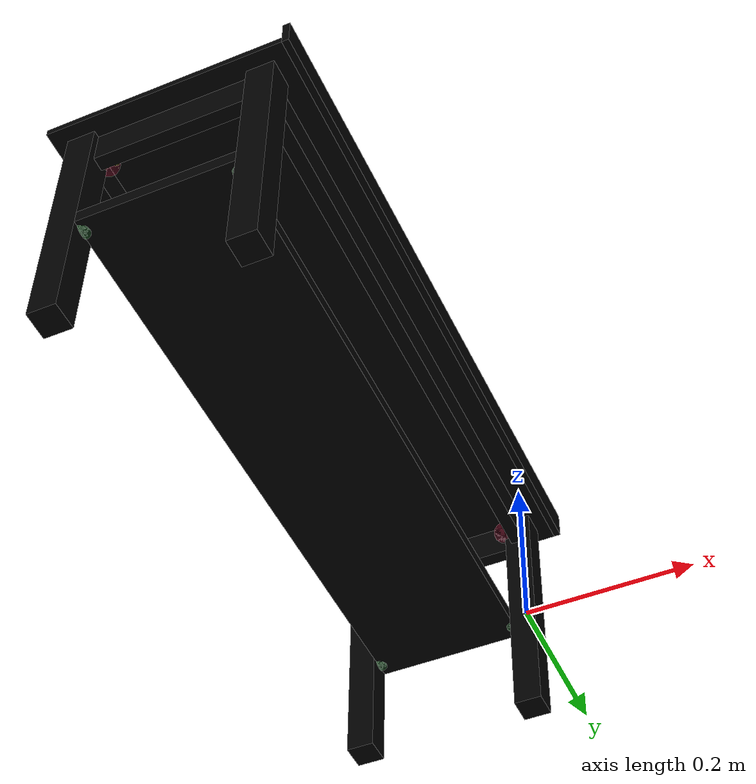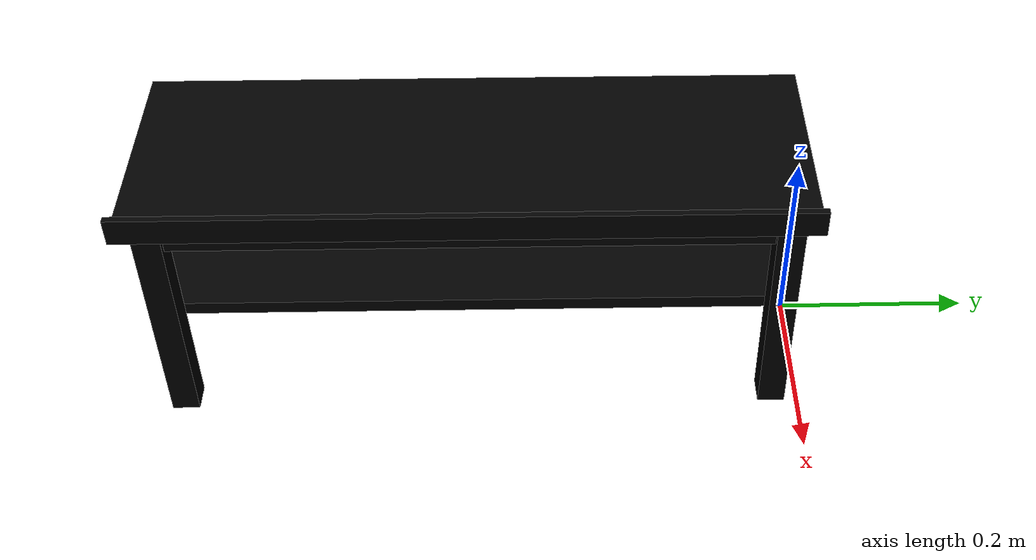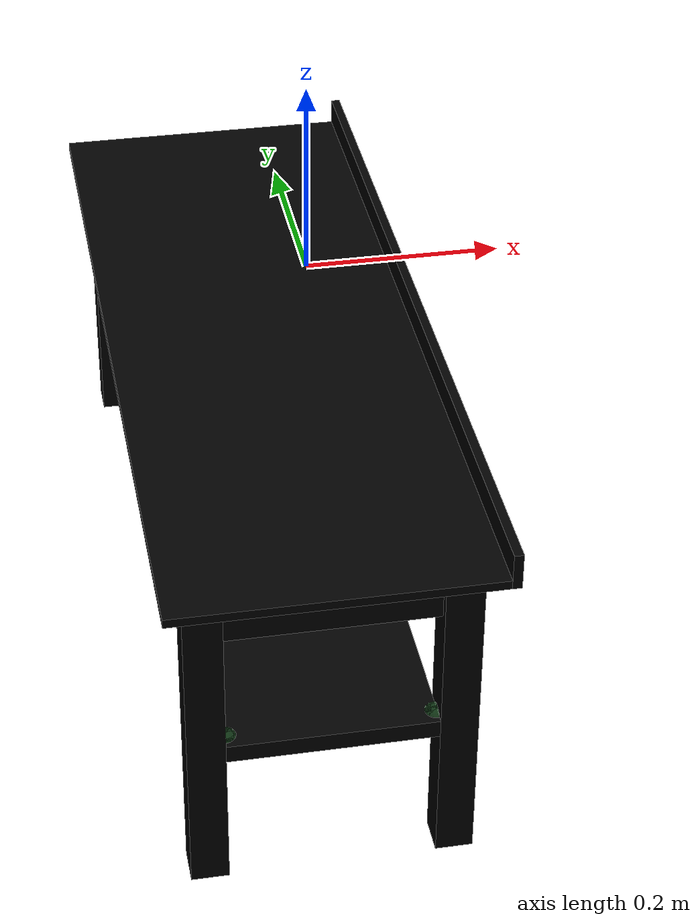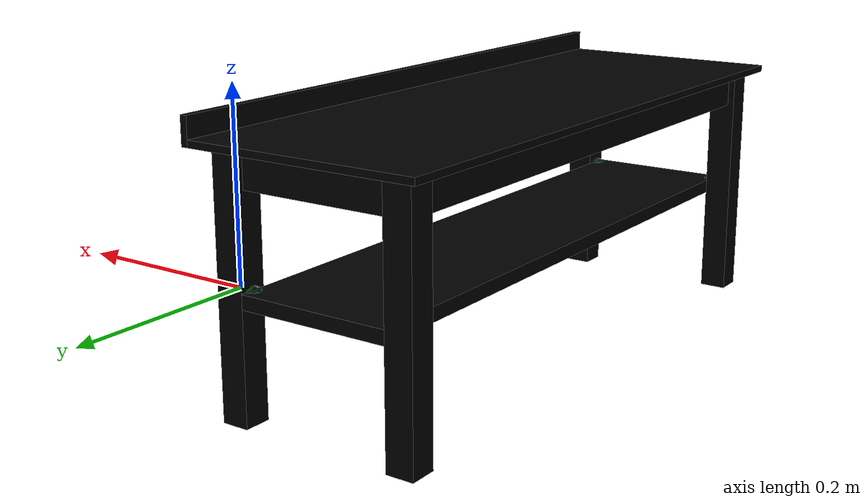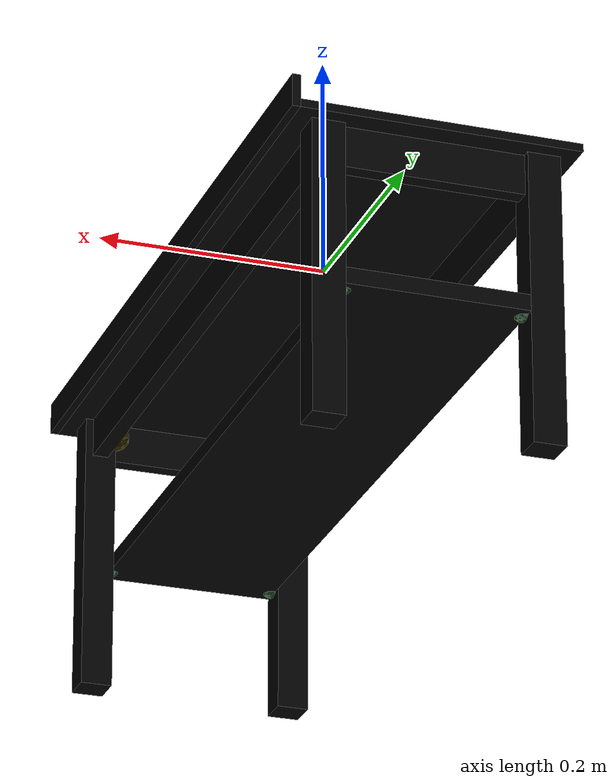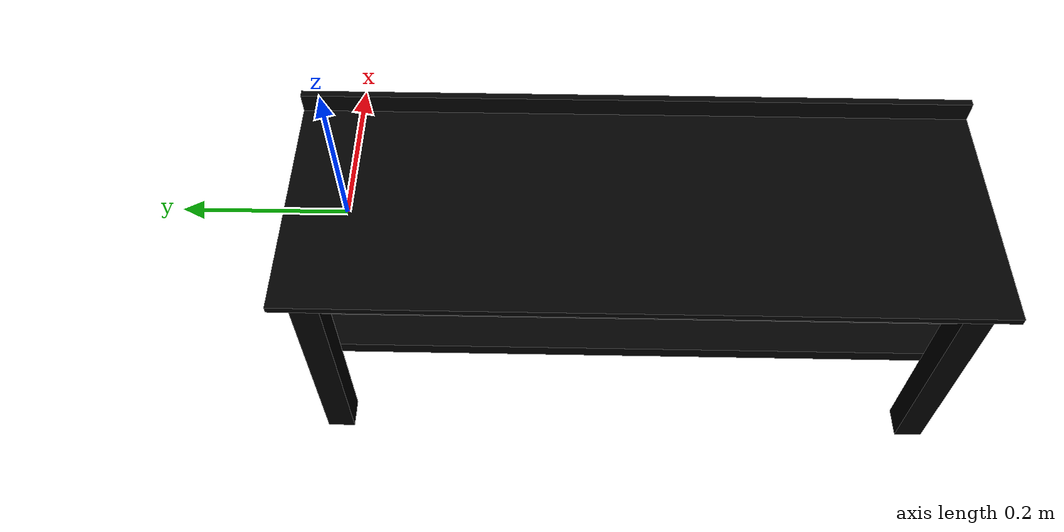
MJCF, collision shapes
<mujoco model="bench_bjoderna_0208">
    <custom>
        <numeric data="0.249251 -0.103173 0.015304 0.707107 -0.707107 0.0 0.0" name="0_part0_initpos"/>
        <numeric data="0.341971 -0.102334 0.015523 0.707107 -0.707107 -1e-06 1e-06" name="3_part3_initpos"/>
        <numeric data="0.231673 0.244826 0.015523 0.707107 -0.707107 0.0 0.0" name="4_part4_initpos"/>
        <numeric data="0.345944 0.263487 0.015304 0.707107 -0.707107 -0.0 -0.0" name="1_part1_initpos"/>
        <numeric data="-0.254193 0.324151 0.007692 0.707107 0.0 0.0 -0.707107" name="5_part5_initpos"/>
        <numeric data="-0.231282 0.005742 0.015327 0.031097 0.706422 -0.706423 0.031097" name="10_part10_initpos"/>
    </custom>
    <asset>
        <mesh file="bench_bjoderna_0208/0.stl" name="part0" scale="0.000608 0.000608 0.000608"/>
        <mesh file="bench_bjoderna_0208/9.stl" name="part9" scale="0.000608 0.000608 0.000608"/>
        <mesh file="bench_bjoderna_0208/8.stl" name="part8" scale="0.000608 0.000608 0.000608"/>
        <mesh file="bench_bjoderna_0208/7.stl" name="part7" scale="0.000608 0.000608 0.000608"/>
        <mesh file="bench_bjoderna_0208/6.stl" name="part6" scale="0.000608 0.000608 0.000608"/>
        <mesh file="bench_bjoderna_0208/5.stl" name="part5" scale="0.000608 0.000608 0.000608"/>
        <mesh file="bench_bjoderna_0208/4.stl" name="part4" scale="0.000608 0.000608 0.000608"/>
        <mesh file="bench_bjoderna_0208/3.stl" name="part3" scale="0.000608 0.000608 0.000608"/>
        <mesh file="bench_bjoderna_0208/2.stl" name="part2" scale="0.000608 0.000608 0.000608"/>
        <mesh file="bench_bjoderna_0208/10.stl" name="part10" scale="0.000608 0.000608 0.000608"/>
        <mesh file="bench_bjoderna_0208/1.stl" name="part1" scale="0.000608 0.000608 0.000608"/>
    </asset>
    <equality>
        <weld active="false" body1="0_part0" body2="10_part10" solimp="1 1 0.5" solref="0.01 0.3"/>
        <weld active="false" body1="10_part10" body2="1_part1" solimp="1 1 0.5" solref="0.01 0.3"/>
        <weld active="false" body1="10_part10" body2="3_part3" solimp="1 1 0.5" solref="0.01 0.3"/>
        <weld active="false" body1="10_part10" body2="4_part4" solimp="1 1 0.5" solref="0.01 0.3"/>
        <weld active="false" body1="0_part0" body2="5_part5" solimp="1 1 0.5" solref="0.01 0.3"/>
        <weld active="false" body1="5_part5" body2="1_part1" solimp="1 1 0.5" solref="0.01 0.3"/>
        <weld active="false" body1="5_part5" body2="3_part3" solimp="1 1 0.5" solref="0.01 0.3"/>
        <weld active="false" body1="5_part5" body2="4_part4" solimp="1 1 0.5" solref="0.01 0.3"/>
        <weld active="false" body1="1_part1" body2="10_part10" solimp="1 1 0.5" solref="0.01 0.3"/>
        <weld active="false" body1="4_part4" body2="10_part10" solimp="1 1 0.5" solref="0.01 0.3"/>
        <weld active="false" body1="0_part0" body2="10_part10" solimp="1 1 0.5" solref="0.01 0.3"/>
        <weld active="false" body1="3_part3" body2="10_part10" solimp="1 1 0.5" solref="0.01 0.3"/>
        <weld active="false" body1="1_part1" body2="5_part5" solimp="1 1 0.5" solref="0.01 0.3"/>
        <weld active="false" body1="0_part0" body2="5_part5" solimp="1 1 0.5" solref="0.01 0.3"/>
        <weld active="false" body1="4_part4" body2="5_part5" solimp="1 1 0.5" solref="0.01 0.3"/>
        <weld active="false" body1="3_part3" body2="5_part5" solimp="1 1 0.5" solref="0.01 0.3"/>
    </equality>
    <worldbody>
        <body name="0_part0" pos="2.4320000000000005e-10 0.0 0.0" quat="1 0 0 0">
            <geom conaffinity="0" contype="0" density="0" mesh="part0" name="0_part0_mesh" pos="0.0 0.0 0.0"
                  rgba="0.82 0.71 0.55 1" type="mesh"/>
            <site name="0_part0_horizontal_radius_site" pos="2.4320000000000005e-10 0.0 0.0" quat="1 0 0 0"
                  rgba="0 0 0 0" size="0.01216"/>
            <site name="0_part0_top_site" pos="2.4320000000000005e-10 6.080000000000001e-11 0.1389888037088"
                  quat="1 0 0 0" rgba="0 0 0 0" size="0.01216"/>
            <site name="0_part0_bottom_site" pos="2.4320000000000005e-10 6.080000000000001e-11 -0.1389888037088"
                  quat="1 0 0 0" rgba="0 0 0 0" size="0.01216"/>
            <site name="0_part0_corner_site8" pos="-0.0154432 0.0154432 0.1389888037088" quat="1 0 0 0" rgba="0 0 0 0"
                  size="0.01216"/>
            <site name="0_part0_corner_site7" pos="0.0154432 0.0154432 0.1389888037088" quat="1 0 0 0" rgba="0 0 0 0"
                  size="0.01216"/>
            <site name="0_part0_corner_site6" pos="0.0154432 -0.0154432 0.1389888037088" quat="1 0 0 0" rgba="0 0 0 0"
                  size="0.01216"/>
            <site name="0_part0_corner_site5" pos="-0.0154432 -0.0154432 0.1389888037088" quat="1 0 0 0" rgba="0 0 0 0"
                  size="0.01216"/>
            <site name="0_part0_corner_site4" pos="-0.0154432 0.0154432 -0.1389888037088" quat="1 0 0 0" rgba="0 0 0 0"
                  size="0.01216"/>
            <site name="0_part0_corner_site3" pos="0.0154432 0.0154432 -0.1389888037088" quat="1 0 0 0" rgba="0 0 0 0"
                  size="0.01216"/>
            <site name="0_part0_corner_site2" pos="0.0154432 -0.0154432 -0.1389888037088" quat="1 0 0 0" rgba="0 0 0 0"
                  size="0.01216"/>
            <site name="0_part0_corner_site1" pos="-0.0154432 -0.0154432 -0.1389888037088" quat="1 0 0 0" rgba="0 0 0 0"
                  size="0.01216"/>
            <geom density="50" name="noviz_collision_0_part0_0"
                  pos="-6.080000000000001e-05 -5.4720000000000005e-05 0.0005350400000000001" quat="1 0 0 0"
                  rgba="0 0 0 0" size="0.015382400000000001 0.015388480000000001 0.13952384" solref="0.001 1"
                  type="box"/>
            <site name="leg1-top,0,conn_site0" pos="-0.0161728 -0.015564800000000002 0.12160000000000003"
                  quat="0.6532815 0.6532816 -0.2705981 -0.2705981" rgba="0.9019 0.0980 0.2941 0.3" size="0.01216"/>
            <site name="leg-bot,0,180,conn_site0" pos="-0.015808 0.0 -0.007296" quat="0.5 0.5 -0.5 -0.5"
                  rgba="0.2352 0.7058 0.2941 0.3" size="0.01216"/>
        </body>
        <body name="3_part3" pos="-0.20076162243520002 -0.6795008275424 0.0" quat="1 0 0 0">
            <geom conaffinity="0" contype="0" density="0" mesh="part3" name="3_part3_mesh" pos="0.0 0.0 0.0"
                  rgba="0.82 0.71 0.55 1" type="mesh"/>
            <site name="3_part3_horizontal_radius_site" pos="-1.824e-10 0.0 0.0" quat="1 0 0 0" rgba="0 0 0 0"
                  size="0.01216"/>
            <site name="3_part3_top_site" pos="-2.4320000000000005e-10 0.0 0.1389888037088" quat="1 0 0 0"
                  rgba="0 0 0 0" size="0.01216"/>
            <site name="3_part3_bottom_site" pos="-2.4320000000000005e-10 0.0 -0.1389888037088" quat="1 0 0 0"
                  rgba="0 0 0 0" size="0.01216"/>
            <site name="3_part3_corner_site8" pos="-0.0154432 0.0154432 0.1389888037088" quat="1 0 0 0" rgba="0 0 0 0"
                  size="0.01216"/>
            <site name="3_part3_corner_site7" pos="0.0154432 0.0154432 0.1389888037088" quat="1 0 0 0" rgba="0 0 0 0"
                  size="0.01216"/>
            <site name="3_part3_corner_site6" pos="0.0154432 -0.0154432 0.1389888037088" quat="1 0 0 0" rgba="0 0 0 0"
                  size="0.01216"/>
            <site name="3_part3_corner_site5" pos="-0.0154432 -0.0154432 0.1389888037088" quat="1 0 0 0" rgba="0 0 0 0"
                  size="0.01216"/>
            <site name="3_part3_corner_site4" pos="-0.0154432 0.0154432 -0.1389888037088" quat="1 0 0 0" rgba="0 0 0 0"
                  size="0.01216"/>
            <site name="3_part3_corner_site3" pos="0.0154432 0.0154432 -0.1389888037088" quat="1 0 0 0" rgba="0 0 0 0"
                  size="0.01216"/>
            <site name="3_part3_corner_site2" pos="0.0154432 -0.0154432 -0.1389888037088" quat="1 0 0 0" rgba="0 0 0 0"
                  size="0.01216"/>
            <site name="3_part3_corner_site1" pos="-0.0154432 -0.0154432 -0.1389888037088" quat="1 0 0 0" rgba="0 0 0 0"
                  size="0.01216"/>
            <geom density="50" name="noviz_collision_3_part3_0"
                  pos="6.080000000000001e-05 5.4720000000000005e-05 0.0005350400000000001" quat="1 0 0 0" rgba="0 0 0 0"
                  size="0.015504000000000002 0.01549792 0.13952384" solref="0.001 1" type="box"/>
            <site name="leg1-top,0,conn_site3" pos="0.015929600000000002 0.015808 0.12160000000000003"
                  quat="0.2705981 0.2705981 0.6532815 0.6532815" rgba="0.9019 0.0980 0.2941 0.3" size="0.01216"/>
            <site name="leg-bot,0,180,conn_site3" pos="0.015929600000000002 -0.0014592 -0.007296" quat="0.5 0.5 0.5 0.5"
                  rgba="0.2352 0.7058 0.2941 0.3" size="0.01216"/>
        </body>
        <body name="4_part4" pos="2.4320000000000005e-10 -0.6795008275424 0.0" quat="1 0 0 0">
            <geom conaffinity="0" contype="0" density="0" mesh="part4" name="4_part4_mesh" pos="0.0 0.0 0.0"
                  rgba="0.82 0.71 0.55 1" type="mesh"/>
            <site name="4_part4_horizontal_radius_site" pos="2.4320000000000005e-10 -0.0 0.0" quat="1 0 0 0"
                  rgba="0 0 0 0" size="0.01216"/>
            <site name="4_part4_top_site" pos="2.4320000000000005e-10 0.0 0.1389888037088" quat="1 0 0 0" rgba="0 0 0 0"
                  size="0.01216"/>
            <site name="4_part4_bottom_site" pos="2.4320000000000005e-10 0.0 -0.1389888037088" quat="1 0 0 0"
                  rgba="0 0 0 0" size="0.01216"/>
            <site name="4_part4_corner_site8" pos="-0.0154432 0.0154432 0.1389888037088" quat="1 0 0 0" rgba="0 0 0 0"
                  size="0.01216"/>
            <site name="4_part4_corner_site7" pos="0.0154432 0.0154432 0.1389888037088" quat="1 0 0 0" rgba="0 0 0 0"
                  size="0.01216"/>
            <site name="4_part4_corner_site6" pos="0.0154432 -0.0154432 0.1389888037088" quat="1 0 0 0" rgba="0 0 0 0"
                  size="0.01216"/>
            <site name="4_part4_corner_site5" pos="-0.0154432 -0.0154432 0.1389888037088" quat="1 0 0 0" rgba="0 0 0 0"
                  size="0.01216"/>
            <site name="4_part4_corner_site4" pos="-0.0154432 0.0154432 -0.1389888037088" quat="1 0 0 0" rgba="0 0 0 0"
                  size="0.01216"/>
            <site name="4_part4_corner_site3" pos="0.0154432 0.0154432 -0.1389888037088" quat="1 0 0 0" rgba="0 0 0 0"
                  size="0.01216"/>
            <site name="4_part4_corner_site2" pos="0.0154432 -0.0154432 -0.1389888037088" quat="1 0 0 0" rgba="0 0 0 0"
                  size="0.01216"/>
            <site name="4_part4_corner_site1" pos="-0.0154432 -0.0154432 -0.1389888037088" quat="1 0 0 0" rgba="0 0 0 0"
                  size="0.01216"/>
            <geom density="50" name="noviz_collision_4_part4_0"
                  pos="-6.080000000000001e-05 5.4720000000000005e-05 0.0005350400000000001" quat="1 0 0 0"
                  rgba="0 0 0 0" size="0.015382400000000001 0.01549792 0.13952384" solref="0.001 1" type="box"/>
            <site name="leg2-top,0,conn_site4" pos="-0.016416 0.015808 0.12160000000000003"
                  quat="-0.2705979 -0.270598 0.6532816 0.6532815" rgba="1.0 0.8823 0.0980 0.3" size="0.01216"/>
            <site name="leg-bot,0,180,conn_site4" pos="-0.015808 -0.0014592 -0.007296" quat="0.5 0.5 -0.5 -0.5"
                  rgba="0.2352 0.7058 0.2941 0.3" size="0.01216"/>
        </body>
        <body name="1_part1" pos="-0.20076162243520002 0.0 0.0" quat="1 0 0 0">
            <geom conaffinity="0" contype="0" density="0" mesh="part1" name="1_part1_mesh" pos="0.0 0.0 0.0"
                  rgba="0.82 0.71 0.55 1" type="mesh"/>
            <site name="1_part1_horizontal_radius_site" pos="-1.824e-10 0.0 0.0" quat="1 0 0 0" rgba="0 0 0 0"
                  size="0.01216"/>
            <site name="1_part1_top_site" pos="-2.4320000000000005e-10 6.080000000000001e-11 0.1389888037088"
                  quat="1 0 0 0" rgba="0 0 0 0" size="0.01216"/>
            <site name="1_part1_bottom_site" pos="-2.4320000000000005e-10 6.080000000000001e-11 -0.1389888037088"
                  quat="1 0 0 0" rgba="0 0 0 0" size="0.01216"/>
            <site name="1_part1_corner_site8" pos="-0.0154432 0.0154432 0.1389888037088" quat="1 0 0 0" rgba="0 0 0 0"
                  size="0.01216"/>
            <site name="1_part1_corner_site7" pos="0.0154432 0.0154432 0.1389888037088" quat="1 0 0 0" rgba="0 0 0 0"
                  size="0.01216"/>
            <site name="1_part1_corner_site6" pos="0.0154432 -0.0154432 0.1389888037088" quat="1 0 0 0" rgba="0 0 0 0"
                  size="0.01216"/>
            <site name="1_part1_corner_site5" pos="-0.0154432 -0.0154432 0.1389888037088" quat="1 0 0 0" rgba="0 0 0 0"
                  size="0.01216"/>
            <site name="1_part1_corner_site4" pos="-0.0154432 0.0154432 -0.1389888037088" quat="1 0 0 0" rgba="0 0 0 0"
                  size="0.01216"/>
            <site name="1_part1_corner_site3" pos="0.0154432 0.0154432 -0.1389888037088" quat="1 0 0 0" rgba="0 0 0 0"
                  size="0.01216"/>
            <site name="1_part1_corner_site2" pos="0.0154432 -0.0154432 -0.1389888037088" quat="1 0 0 0" rgba="0 0 0 0"
                  size="0.01216"/>
            <site name="1_part1_corner_site1" pos="-0.0154432 -0.0154432 -0.1389888037088" quat="1 0 0 0" rgba="0 0 0 0"
                  size="0.01216"/>
            <geom density="50" name="noviz_collision_1_part1_0"
                  pos="6.080000000000001e-05 -5.4720000000000005e-05 0.0005350400000000001" quat="1 0 0 0"
                  rgba="0 0 0 0" size="0.015504000000000002 0.015388480000000001 0.13952384" solref="0.001 1"
                  type="box"/>
            <site name="leg2-top,0,conn_site1" pos="0.015929600000000002 -0.015564800000000002 0.12160000000000003"
                  quat="0.6532815 0.6532816 0.2705981 0.2705981" rgba="1.0 0.8823 0.0980 0.3" size="0.01216"/>
            <site name="leg-bot,0,180,conn_site1" pos="0.015929600000000002 0.0 -0.007296" quat="0.5 0.5 0.5 0.5"
                  rgba="0.2352 0.7058 0.2941 0.3" size="0.01216"/>
        </body>
        <body name="5_part5" pos="-0.10038081495680001 -0.33975039148800007 -0.007721602796800001" quat="1 0 0 0">
            <geom conaffinity="0" contype="0" density="0" mesh="part5" name="5_part5_mesh" pos="0.0 0.0 0.0"
                  rgba="0.82 0.71 0.55 1" type="mesh"/>
            <site name="5_part5_horizontal_radius_site" pos="-6.080000000000001e-11 8.512e-09 0.0" quat="1 0 0 0"
                  rgba="0 0 0 0" size="0.01216"/>
            <site name="5_part5_top_site" pos="-6.080000000000001e-11 8.451200000000002e-09 0.007721602796800001"
                  quat="1 0 0 0" rgba="0 0 0 0" size="0.01216"/>
            <site name="5_part5_bottom_site" pos="-6.080000000000001e-11 8.451200000000002e-09 -0.007721602796800001"
                  quat="1 0 0 0" rgba="0 0 0 0" size="0.01216"/>
            <site name="5_part5_corner_site8" pos="-0.0849376354464 0.35519364450560004 0.007721602796800001"
                  quat="1 0 0 0" rgba="0 0 0 0" size="0.01216"/>
            <site name="5_part5_corner_site7" pos="0.08493763526400001 0.35519364450560004 0.007721602796800001"
                  quat="1 0 0 0" rgba="0 0 0 0" size="0.01216"/>
            <site name="5_part5_corner_site6" pos="0.08493763526400001 -0.3551936275424 0.007721602796800001"
                  quat="1 0 0 0" rgba="0 0 0 0" size="0.01216"/>
            <site name="5_part5_corner_site5" pos="-0.0849376354464 -0.3551936275424 0.007721602796800001"
                  quat="1 0 0 0" rgba="0 0 0 0" size="0.01216"/>
            <site name="5_part5_corner_site4" pos="-0.0849376354464 0.35519364450560004 -0.007721602796800001"
                  quat="1 0 0 0" rgba="0 0 0 0" size="0.01216"/>
            <site name="5_part5_corner_site3" pos="0.08493763526400001 0.35519364450560004 -0.007721602796800001"
                  quat="1 0 0 0" rgba="0 0 0 0" size="0.01216"/>
            <site name="5_part5_corner_site2" pos="0.08493763526400001 -0.3551936275424 -0.007721602796800001"
                  quat="1 0 0 0" rgba="0 0 0 0" size="0.01216"/>
            <site name="5_part5_corner_site1" pos="-0.0849376354464 -0.3551936275424 -0.007721602796800001"
                  quat="1 0 0 0" rgba="0 0 0 0" size="0.01216"/>
            <geom density="50" name="noviz_collision_5_part5_0" pos="0.0 0.0 0.0" quat="1 0 0 0" rgba="0 0 0 0"
                  size="0.0849376 0.35519360000000005 0.0077216" solref="0.001 1" type="box"/>
            <site name="bot-leg,0,180,conn_site4" pos="0.0845728 0.3397504 0.00042560000000000005"
                  quat="0.5 0.5 -0.5 -0.5" rgba="0.2352 0.7058 0.2941 0.3" size="0.01216"/>
            <site name="bot-leg,0,180,conn_site3" pos="-0.0844512 -0.3412096 0.00042560000000000005"
                  quat="0.5 0.5 0.5 0.5" rgba="0.2352 0.7058 0.2941 0.3" size="0.01216"/>
            <site name="bot-leg,0,180,conn_site2" pos="0.0845728 -0.3412096 0.00042560000000000005"
                  quat="0.5 0.5 -0.5 -0.5" rgba="0.2352 0.7058 0.2941 0.3" size="0.01216"/>
            <site name="bot-leg,0,180,conn_site1" pos="-0.0844512 0.3397504 0.00042560000000000005"
                  quat="0.5 0.5 0.5 0.5" rgba="0.2352 0.7058 0.2941 0.3" size="0.01216"/>
        </body>
        <body name="10_part10" pos="-0.10038082790719999 -0.33975044158719997 0.14284959629120003" quat="1 0 0 0">
            <geom conaffinity="0" contype="0" density="0" mesh="part10" name="10_part10_mesh" pos="0.0 0.0 0.0"
                  rgba="0.82 0.71 0.55 1" type="mesh"/>
            <geom conaffinity="0" contype="0" density="0" mesh="part9" name="9_part9_mesh"
                  pos="0.0 -0.3397504 -0.023164800000000003" rgba="0.82 0.71 0.55 1" type="mesh"/>
            <geom conaffinity="0" contype="0" density="0" mesh="part8" name="8_part8_mesh"
                  pos="0.1003808 0.0 -0.023164800000000003" rgba="0.82 0.71 0.55 1" type="mesh"/>
            <geom conaffinity="0" contype="0" density="0" mesh="part7" name="7_part7_mesh"
                  pos="0.0 0.3397504 -0.023164800000000003" rgba="0.82 0.71 0.55 1" type="mesh"/>
            <geom conaffinity="0" contype="0" density="0" mesh="part6" name="6_part6_mesh"
                  pos="-0.1003808 0.0 -0.023164800000000003" rgba="0.82 0.71 0.55 1" type="mesh"/>
            <geom conaffinity="0" contype="0" density="0" mesh="part2" name="2_part2_mesh" pos="0.1350976 0.0 0.011552"
                  rgba="0.82 0.71 0.55 1" type="mesh"/>
            <site name="10_part10_horizontal_radius_site" pos="1.7632000000000003e-09 -8.208000000000001e-09 0.0"
                  quat="1 0 0 0" rgba="0 0 0 0" size="0.01216"/>
            <site name="10_part10_top_site" pos="1.8240000000000001e-09 -8.208000000000001e-09 0.0038608" quat="1 0 0 0"
                  rgba="0 0 0 0" size="0.01216"/>
            <site name="10_part10_bottom_site" pos="1.8240000000000001e-09 -8.208000000000001e-09 -0.0038608"
                  quat="1 0 0 0" rgba="0 0 0 0" size="0.01216"/>
            <site name="10_part10_corner_site8" pos="-0.1312672205504 0.3706368058368001 0.0038608" quat="1 0 0 0"
                  rgba="0 0 0 0" size="0.01216"/>
            <site name="10_part10_corner_site7" pos="0.13126722413760003 0.3706368058368001 0.0038608" quat="1 0 0 0"
                  rgba="0 0 0 0" size="0.01216"/>
            <site name="10_part10_corner_site6" pos="0.13126722413760003 -0.3706368222528 0.0038608" quat="1 0 0 0"
                  rgba="0 0 0 0" size="0.01216"/>
            <site name="10_part10_corner_site5" pos="-0.1312672205504 -0.3706368222528 0.0038608" quat="1 0 0 0"
                  rgba="0 0 0 0" size="0.01216"/>
            <site name="10_part10_corner_site4" pos="-0.1312672205504 0.3706368058368001 -0.0038608" quat="1 0 0 0"
                  rgba="0 0 0 0" size="0.01216"/>
            <site name="10_part10_corner_site3" pos="0.13126722413760003 0.3706368058368001 -0.0038608" quat="1 0 0 0"
                  rgba="0 0 0 0" size="0.01216"/>
            <site name="10_part10_corner_site2" pos="0.13126722413760003 -0.3706368222528 -0.0038608" quat="1 0 0 0"
                  rgba="0 0 0 0" size="0.01216"/>
            <site name="10_part10_corner_site1" pos="-0.1312672205504 -0.3706368222528 -0.0038608" quat="1 0 0 0"
                  rgba="0 0 0 0" size="0.01216"/>
            <geom density="50" name="noviz_collision_10_part10_0" pos="0.0 0.0 -1.2160000000000002e-05" quat="1 0 0 0"
                  rgba="0 0 0 0" size="0.1312672 0.37063680000000004 0.00384864" solref="0.001 1" type="box"/>
            <geom density="50" name="noviz_collision_9_part9_0" pos="0.0 -0.3397504 -0.023164800000000003"
                  quat="1 0 0 0" rgba="0 0 0 0" size="0.0849376 0.0077216 0.019304" solref="0.001 1" type="box"/>
            <geom density="50" name="noviz_collision_8_part8_0" pos="0.1003808 0.0 -0.023164800000000003" quat="1 0 0 0"
                  rgba="0 0 0 0" size="0.0077216 0.3243072 0.019304" solref="0.001 1" type="box"/>
            <geom density="50" name="noviz_collision_7_part7_0" pos="0.0 0.3397504 -0.023164800000000003" quat="1 0 0 0"
                  rgba="0 0 0 0" size="0.0849376 0.0077216 0.019304" solref="0.001 1" type="box"/>
            <geom density="50" name="noviz_collision_6_part6_0" pos="-0.1003808 0.0 -0.023164800000000003"
                  quat="1 0 0 0" rgba="0 0 0 0" size="0.0077216 0.3243072 0.019304" solref="0.001 1" type="box"/>
            <geom density="50" name="noviz_collision_2_part2_0" pos="0.1350976 0.0 0.011552" quat="1 0 0 0"
                  rgba="0 0 0 0" size="0.0038608 0.37063680000000004 0.0154432" solref="0.001 1" type="box"/>
            <site name="top-leg1,0,conn_site0" pos="0.084208 0.3241856 -0.0212496"
                  quat="0.6532815 0.6532816 -0.2705981 -0.2705981" rgba="0.9019 0.0980 0.2941 0.3" size="0.01216"/>
            <site name="top-leg2,0,conn_site1" pos="0.0839648 -0.3239424000000001 -0.0212496"
                  quat="-0.2705979 -0.270598 0.6532816 0.6532815" rgba="1.0 0.8823 0.0980 0.3" size="0.01216"/>
            <site name="top-leg2,0,conn_site4" pos="-0.0844512 -0.3239424000000001 -0.0212496"
                  quat="0.2705981 0.2705981 0.6532815 0.6532815" rgba="1.0 0.8823 0.0980 0.3" size="0.01216"/>
            <site name="top-leg1,0,conn_site3" pos="-0.0844512 0.3241856 -0.0212496"
                  quat="0.6532815 0.6532816 0.2705981 0.2705981" rgba="0.9019 0.0980 0.2941 0.3" size="0.01216"/>
        </body>
    </worldbody>
    <actuator/>
    <sensor/>
    <contact/>
    <default/>
</mujoco>
